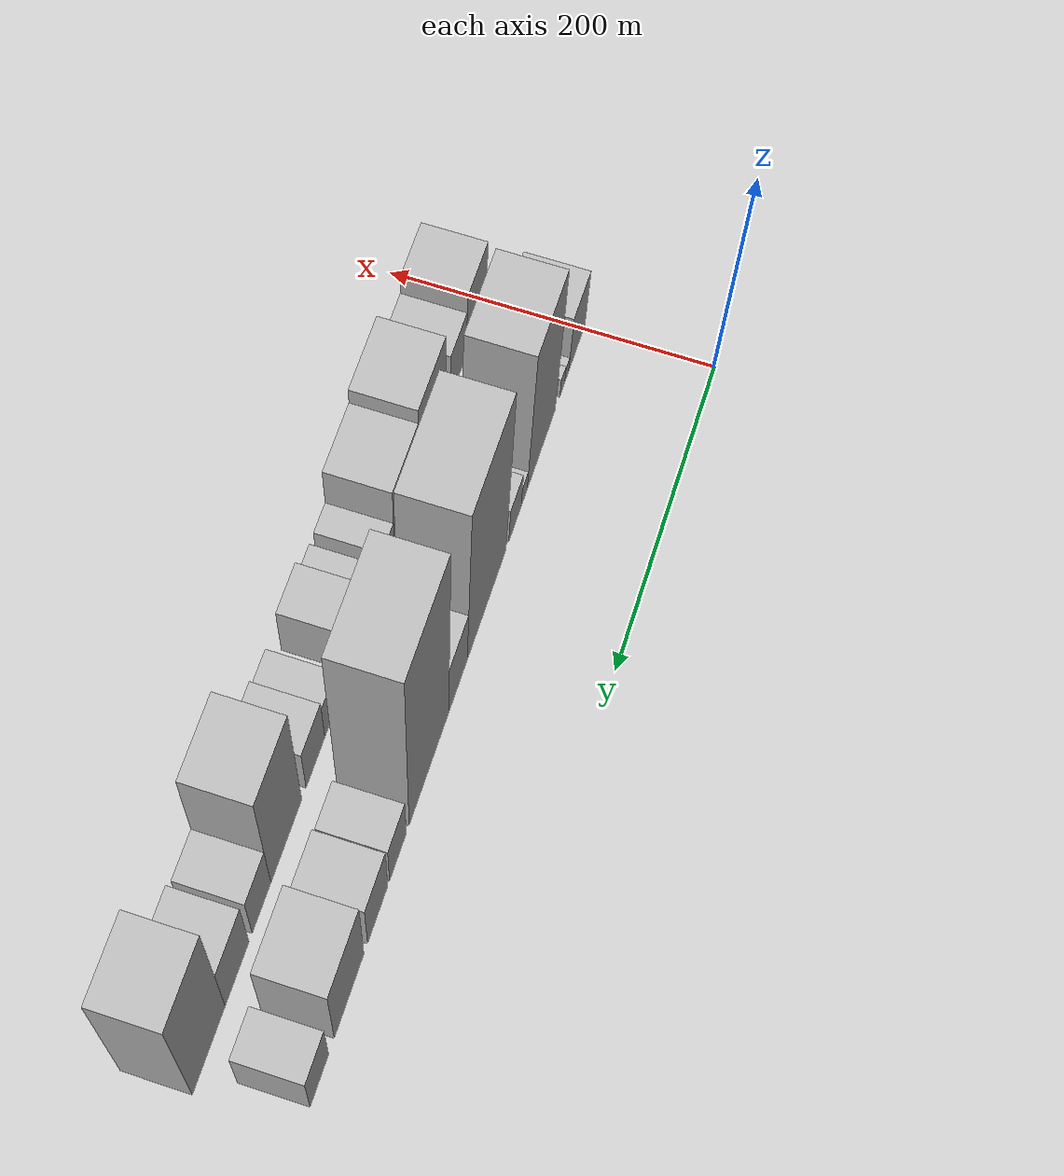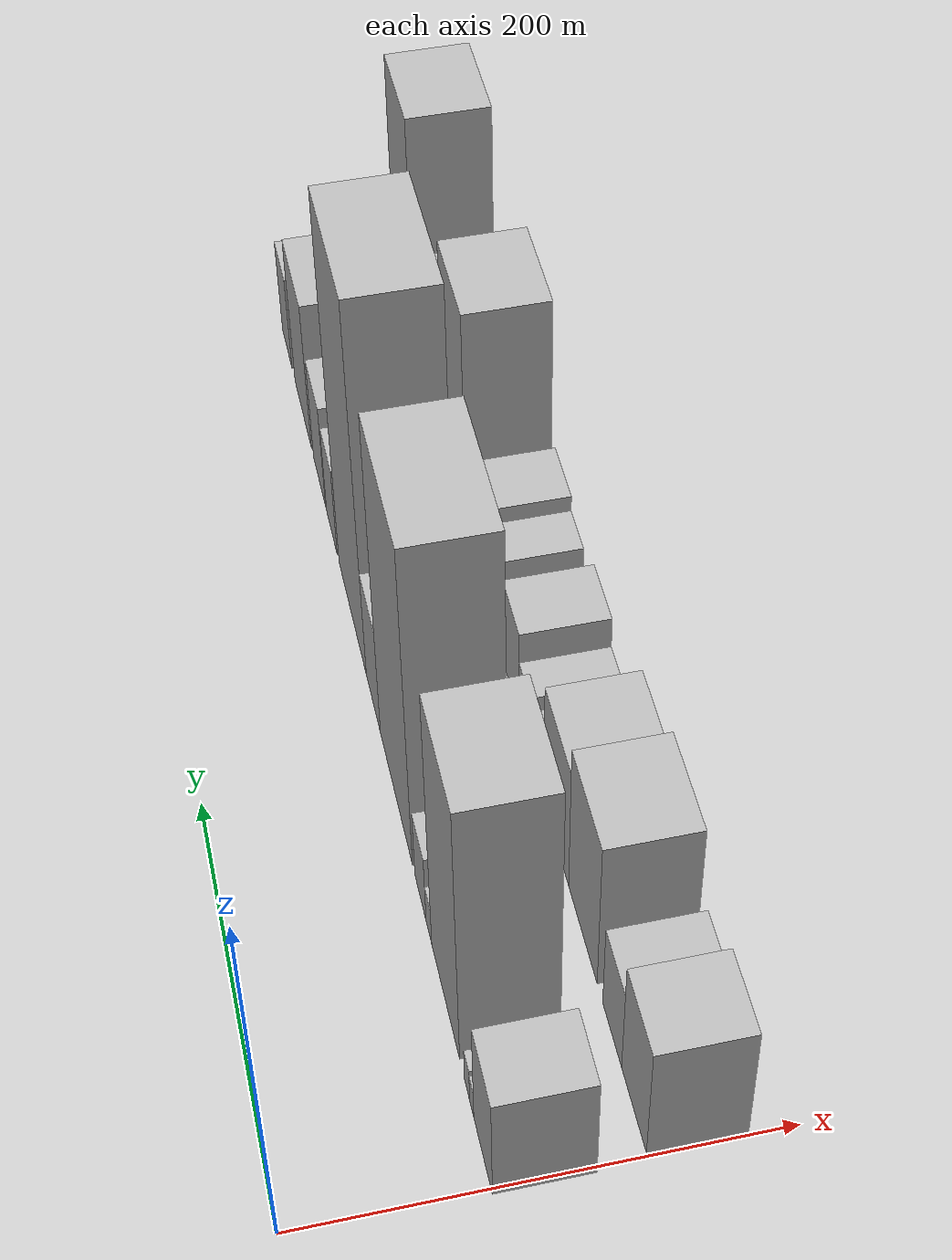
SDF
<sdf version="1.6">
 <world name="default">
  <model name="building_11">
   <static>1</static>
   <pose>100.0000 14.1119 0 0.000000 0.000000 0.000000</pose>
   <link name="link">
    <pose>0 0 31.50 0 0 0</pose>
    <collision name="collision"><geometry><box><size>40.0000 32.6657 63.0000</size></box></geometry></collision>
    <visual name="visual">
     <cast_shadows>0</cast_shadows>
     <geometry><box><size>40.0000 32.6657 63.0000</size></box></geometry>
     <material>
      <script>
       <uri>model://HANNAS_wall/materials/scripts</uri>
       <uri>model://HANNAS_wall/materials/textures</uri>
       <name>vrc/HANNAS_wall</name>
      </script>
     </material>
    </visual>
   </link>
  </model>
  <model name="building_12">
   <static>1</static>
   <pose>100.0000 34.2035 0 0.000000 0.000000 0.000000</pose>
   <link name="link">
    <pose>0 0 9.00 0 0 0</pose>
    <collision name="collision"><geometry><box><size>40.0000 7.5174 18.0000</size></box></geometry></collision>
    <visual name="visual">
     <cast_shadows>0</cast_shadows>
     <geometry><box><size>40.0000 7.5174 18.0000</size></box></geometry>
     <material>
      <script>
       <uri>model://HANNAS_wall/materials/scripts</uri>
       <uri>model://HANNAS_wall/materials/textures</uri>
       <name>vrc/HANNAS_wall</name>
      </script>
     </material>
    </visual>
   </link>
  </model>
  <model name="building_13">
   <static>1</static>
   <pose>100.0000 42.6813 0 0.000000 0.000000 0.000000</pose>
   <link name="link">
    <pose>0 0 10.50 0 0 0</pose>
    <collision name="collision"><geometry><box><size>40.0000 9.4382 21.0000</size></box></geometry></collision>
    <visual name="visual">
     <cast_shadows>0</cast_shadows>
     <geometry><box><size>40.0000 9.4382 21.0000</size></box></geometry>
     <material>
      <script>
       <uri>model://HANNAS_wall/materials/scripts</uri>
       <uri>model://HANNAS_wall/materials/textures</uri>
       <name>vrc/HANNAS_wall</name>
      </script>
     </material>
    </visual>
   </link>
  </model>
  <model name="building_14">
   <static>1</static>
   <pose>100.0000 83.3223 0 0.000000 0.000000 0.000000</pose>
   <link name="link">
    <pose>0 0 79.50 0 0 0</pose>
    <collision name="collision"><geometry><box><size>40.0000 53.8439 159.0000</size></box></geometry></collision>
    <visual name="visual">
     <cast_shadows>0</cast_shadows>
     <geometry><box><size>40.0000 53.8439 159.0000</size></box></geometry>
     <material>
      <script>
       <uri>model://HANNAS_wall/materials/scripts</uri>
       <uri>model://HANNAS_wall/materials/textures</uri>
       <name>vrc/HANNAS_wall</name>
      </script>
     </material>
    </visual>
   </link>
  </model>
  <model name="building_15">
   <static>1</static>
   <pose>100.0000 115.8907 0 0.000000 0.000000 0.000000</pose>
   <link name="link">
    <pose>0 0 12.00 0 0 0</pose>
    <collision name="collision"><geometry><box><size>40.0000 11.2929 24.0000</size></box></geometry></collision>
    <visual name="visual">
     <cast_shadows>0</cast_shadows>
     <geometry><box><size>40.0000 11.2929 24.0000</size></box></geometry>
     <material>
      <script>
       <uri>model://HANNAS_wall/materials/scripts</uri>
       <uri>model://HANNAS_wall/materials/textures</uri>
       <name>vrc/HANNAS_wall</name>
      </script>
     </material>
    </visual>
   </link>
  </model>
  <model name="building_16">
   <static>1</static>
   <pose>100.0000 133.2176 0 0.000000 0.000000 0.000000</pose>
   <link name="link">
    <pose>0 0 21.00 0 0 0</pose>
    <collision name="collision"><geometry><box><size>40.0000 23.3609 42.0000</size></box></geometry></collision>
    <visual name="visual">
     <cast_shadows>0</cast_shadows>
     <geometry><box><size>40.0000 23.3609 42.0000</size></box></geometry>
     <material>
      <script>
       <uri>model://HANNAS_wall/materials/scripts</uri>
       <uri>model://HANNAS_wall/materials/textures</uri>
       <name>vrc/HANNAS_wall</name>
      </script>
     </material>
    </visual>
   </link>
  </model>
  <model name="building_17">
   <static>1</static>
   <pose>100.0000 185.1292 0 0.000000 0.000000 0.000000</pose>
   <link name="link">
    <pose>0 0 96.00 0 0 0</pose>
    <collision name="collision"><geometry><box><size>40.0000 70.4622 192.0000</size></box></geometry></collision>
    <visual name="visual">
     <cast_shadows>0</cast_shadows>
     <geometry><box><size>40.0000 70.4622 192.0000</size></box></geometry>
     <material>
      <script>
       <uri>model://HANNAS_wall/materials/scripts</uri>
       <uri>model://HANNAS_wall/materials/textures</uri>
       <name>vrc/HANNAS_wall</name>
      </script>
     </material>
    </visual>
   </link>
  </model>
  <model name="building_18">
   <static>1</static>
   <pose>100.0000 236.8754 0 0.000000 0.000000 0.000000</pose>
   <link name="link">
    <pose>0 0 33.00 0 0 0</pose>
    <collision name="collision"><geometry><box><size>40.0000 33.0302 66.0000</size></box></geometry></collision>
    <visual name="visual">
     <cast_shadows>0</cast_shadows>
     <geometry><box><size>40.0000 33.0302 66.0000</size></box></geometry>
     <material>
      <script>
       <uri>model://HANNAS_wall/materials/scripts</uri>
       <uri>model://HANNAS_wall/materials/textures</uri>
       <name>vrc/HANNAS_wall</name>
      </script>
     </material>
    </visual>
   </link>
  </model>
  <model name="building_19">
   <static>1</static>
   <pose>100.0000 287.3992 0 0.000000 0.000000 0.000000</pose>
   <link name="link">
    <pose>0 0 109.50 0 0 0</pose>
    <collision name="collision"><geometry><box><size>40.0000 68.0175 219.0000</size></box></geometry></collision>
    <visual name="visual">
     <cast_shadows>0</cast_shadows>
     <geometry><box><size>40.0000 68.0175 219.0000</size></box></geometry>
     <material>
      <script>
       <uri>model://HANNAS_wall/materials/scripts</uri>
       <uri>model://HANNAS_wall/materials/textures</uri>
       <name>vrc/HANNAS_wall</name>
      </script>
     </material>
    </visual>
   </link>
  </model>
  <model name="building_20">
   <static>1</static>
   <pose>100.0000 340.3012 0 0.000000 0.000000 0.000000</pose>
   <link name="link">
    <pose>0 0 27.00 0 0 0</pose>
    <collision name="collision"><geometry><box><size>40.0000 27.7864 54.0000</size></box></geometry></collision>
    <visual name="visual">
     <cast_shadows>0</cast_shadows>
     <geometry><box><size>40.0000 27.7864 54.0000</size></box></geometry>
     <material>
      <script>
       <uri>model://HANNAS_wall/materials/scripts</uri>
       <uri>model://HANNAS_wall/materials/textures</uri>
       <name>vrc/HANNAS_wall</name>
      </script>
     </material>
    </visual>
   </link>
  </model>
  <model name="building_21">
   <static>1</static>
   <pose>100.0000 373.6779 0 0.000000 0.000000 0.000000</pose>
   <link name="link">
    <pose>0 0 31.50 0 0 0</pose>
    <collision name="collision"><geometry><box><size>40.0000 32.9671 63.0000</size></box></geometry></collision>
    <visual name="visual">
     <cast_shadows>0</cast_shadows>
     <geometry><box><size>40.0000 32.9671 63.0000</size></box></geometry>
     <material>
      <script>
       <uri>model://HANNAS_wall/materials/scripts</uri>
       <uri>model://HANNAS_wall/materials/textures</uri>
       <name>vrc/HANNAS_wall</name>
      </script>
     </material>
    </visual>
   </link>
  </model>
  <model name="building_22">
   <static>1</static>
   <pose>100.0000 419.8662 0 0.000000 0.000000 0.000000</pose>
   <link name="link">
    <pose>0 0 45.00 0 0 0</pose>
    <collision name="collision"><geometry><box><size>40.0000 47.4095 90.0000</size></box></geometry></collision>
    <visual name="visual">
     <cast_shadows>0</cast_shadows>
     <geometry><box><size>40.0000 47.4095 90.0000</size></box></geometry>
     <material>
      <script>
       <uri>model://HANNAS_wall/materials/scripts</uri>
       <uri>model://HANNAS_wall/materials/textures</uri>
       <name>vrc/HANNAS_wall</name>
      </script>
     </material>
    </visual>
   </link>
  </model>
  <model name="building_23">
   <static>1</static>
   <pose>100.0000 466.9718 0 0.000000 0.000000 0.000000</pose>
   <link name="link">
    <pose>0 0 28.50 0 0 0</pose>
    <collision name="collision"><geometry><box><size>40.0000 28.8017 57.0000</size></box></geometry></collision>
    <visual name="visual">
     <cast_shadows>0</cast_shadows>
     <geometry><box><size>40.0000 28.8017 57.0000</size></box></geometry>
     <material>
      <script>
       <uri>model://HANNAS_wall/materials/scripts</uri>
       <uri>model://HANNAS_wall/materials/textures</uri>
       <name>vrc/HANNAS_wall</name>
      </script>
     </material>
    </visual>
   </link>
  </model>
  <model name="building_38">
   <static>1</static>
   <pose>160.0000 20.1905 0 0.000000 0.000000 0.000000</pose>
   <link name="link">
    <pose>0 0 34.50 0 0 0</pose>
    <collision name="collision"><geometry><box><size>40.0000 37.3941 69.0000</size></box></geometry></collision>
    <visual name="visual">
     <cast_shadows>0</cast_shadows>
     <geometry><box><size>40.0000 37.3941 69.0000</size></box></geometry>
     <material>
      <script>
       <uri>model://HANNAS_wall/materials/scripts</uri>
       <uri>model://HANNAS_wall/materials/textures</uri>
       <name>vrc/HANNAS_wall</name>
      </script>
     </material>
    </visual>
   </link>
  </model>
  <model name="building_39">
   <static>1</static>
   <pose>160.0000 53.7200 0 0.000000 0.000000 0.000000</pose>
   <link name="link">
    <pose>0 0 25.50 0 0 0</pose>
    <collision name="collision"><geometry><box><size>40.0000 29.6651 51.0000</size></box></geometry></collision>
    <visual name="visual">
     <cast_shadows>0</cast_shadows>
     <geometry><box><size>40.0000 29.6651 51.0000</size></box></geometry>
     <material>
      <script>
       <uri>model://HANNAS_wall/materials/scripts</uri>
       <uri>model://HANNAS_wall/materials/textures</uri>
       <name>vrc/HANNAS_wall</name>
      </script>
     </material>
    </visual>
   </link>
  </model>
  <model name="building_40">
   <static>1</static>
   <pose>160.0000 101.4592 0 0.000000 0.000000 0.000000</pose>
   <link name="link">
    <pose>0 0 45.00 0 0 0</pose>
    <collision name="collision"><geometry><box><size>40.0000 47.8132 90.0000</size></box></geometry></collision>
    <visual name="visual">
     <cast_shadows>0</cast_shadows>
     <geometry><box><size>40.0000 47.8132 90.0000</size></box></geometry>
     <material>
      <script>
       <uri>model://HANNAS_wall/materials/scripts</uri>
       <uri>model://HANNAS_wall/materials/textures</uri>
       <name>vrc/HANNAS_wall</name>
      </script>
     </material>
    </visual>
   </link>
  </model>
  <model name="building_41">
   <static>1</static>
   <pose>160.0000 147.4232 0 0.000000 0.000000 0.000000</pose>
   <link name="link">
    <pose>0 0 37.50 0 0 0</pose>
    <collision name="collision"><geometry><box><size>40.0000 44.1148 75.0000</size></box></geometry></collision>
    <visual name="visual">
     <cast_shadows>0</cast_shadows>
     <geometry><box><size>40.0000 44.1148 75.0000</size></box></geometry>
     <material>
      <script>
       <uri>model://HANNAS_wall/materials/scripts</uri>
       <uri>model://HANNAS_wall/materials/textures</uri>
       <name>vrc/HANNAS_wall</name>
      </script>
     </material>
    </visual>
   </link>
  </model>
  <model name="building_42">
   <static>1</static>
   <pose>160.0000 179.1580 0 0.000000 0.000000 0.000000</pose>
   <link name="link">
    <pose>0 0 18.00 0 0 0</pose>
    <collision name="collision"><geometry><box><size>40.0000 19.3549 36.0000</size></box></geometry></collision>
    <visual name="visual">
     <cast_shadows>0</cast_shadows>
     <geometry><box><size>40.0000 19.3549 36.0000</size></box></geometry>
     <material>
      <script>
       <uri>model://HANNAS_wall/materials/scripts</uri>
       <uri>model://HANNAS_wall/materials/textures</uri>
       <name>vrc/HANNAS_wall</name>
      </script>
     </material>
    </visual>
   </link>
  </model>
  <model name="building_43">
   <static>1</static>
   <pose>160.0000 205.8240 0 0.000000 0.000000 0.000000</pose>
   <link name="link">
    <pose>0 0 18.00 0 0 0</pose>
    <collision name="collision"><geometry><box><size>40.0000 19.9771 36.0000</size></box></geometry></collision>
    <visual name="visual">
     <cast_shadows>0</cast_shadows>
     <geometry><box><size>40.0000 19.9771 36.0000</size></box></geometry>
     <material>
      <script>
       <uri>model://HANNAS_wall/materials/scripts</uri>
       <uri>model://HANNAS_wall/materials/textures</uri>
       <name>vrc/HANNAS_wall</name>
      </script>
     </material>
    </visual>
   </link>
  </model>
  <model name="building_44">
   <static>1</static>
   <pose>160.0000 231.4944 0 0.000000 0.000000 0.000000</pose>
   <link name="link">
    <pose>0 0 27.00 0 0 0</pose>
    <collision name="collision"><geometry><box><size>40.0000 31.3637 54.0000</size></box></geometry></collision>
    <visual name="visual">
     <cast_shadows>0</cast_shadows>
     <geometry><box><size>40.0000 31.3637 54.0000</size></box></geometry>
     <material>
      <script>
       <uri>model://HANNAS_wall/materials/scripts</uri>
       <uri>model://HANNAS_wall/materials/textures</uri>
       <name>vrc/HANNAS_wall</name>
      </script>
     </material>
    </visual>
   </link>
  </model>
  <model name="building_45">
   <static>1</static>
   <pose>160.0000 260.5845 0 0.000000 0.000000 0.000000</pose>
   <link name="link">
    <pose>0 0 9.00 0 0 0</pose>
    <collision name="collision"><geometry><box><size>40.0000 8.8166 18.0000</size></box></geometry></collision>
    <visual name="visual">
     <cast_shadows>0</cast_shadows>
     <geometry><box><size>40.0000 8.8166 18.0000</size></box></geometry>
     <material>
      <script>
       <uri>model://HANNAS_wall/materials/scripts</uri>
       <uri>model://HANNAS_wall/materials/textures</uri>
       <name>vrc/HANNAS_wall</name>
      </script>
     </material>
    </visual>
   </link>
  </model>
  <model name="building_46">
   <static>1</static>
   <pose>160.0000 276.5592 0 0.000000 0.000000 0.000000</pose>
   <link name="link">
    <pose>0 0 22.50 0 0 0</pose>
    <collision name="collision"><geometry><box><size>40.0000 23.1328 45.0000</size></box></geometry></collision>
    <visual name="visual">
     <cast_shadows>0</cast_shadows>
     <geometry><box><size>40.0000 23.1328 45.0000</size></box></geometry>
     <material>
      <script>
       <uri>model://HANNAS_wall/materials/scripts</uri>
       <uri>model://HANNAS_wall/materials/textures</uri>
       <name>vrc/HANNAS_wall</name>
      </script>
     </material>
    </visual>
   </link>
  </model>
  <model name="building_47">
   <static>1</static>
   <pose>160.0000 303.4868 0 0.000000 0.000000 0.000000</pose>
   <link name="link">
    <pose>0 0 27.00 0 0 0</pose>
    <collision name="collision"><geometry><box><size>40.0000 30.7224 54.0000</size></box></geometry></collision>
    <visual name="visual">
     <cast_shadows>0</cast_shadows>
     <geometry><box><size>40.0000 30.7224 54.0000</size></box></geometry>
     <material>
      <script>
       <uri>model://HANNAS_wall/materials/scripts</uri>
       <uri>model://HANNAS_wall/materials/textures</uri>
       <name>vrc/HANNAS_wall</name>
      </script>
     </material>
    </visual>
   </link>
  </model>
  <model name="building_48">
   <static>1</static>
   <pose>160.0000 350.4329 0 0.000000 0.000000 0.000000</pose>
   <link name="link">
    <pose>0 0 67.50 0 0 0</pose>
    <collision name="collision"><geometry><box><size>40.0000 49.1699 135.0000</size></box></geometry></collision>
    <visual name="visual">
     <cast_shadows>0</cast_shadows>
     <geometry><box><size>40.0000 49.1699 135.0000</size></box></geometry>
     <material>
      <script>
       <uri>model://HANNAS_wall/materials/scripts</uri>
       <uri>model://HANNAS_wall/materials/textures</uri>
       <name>vrc/HANNAS_wall</name>
      </script>
     </material>
    </visual>
   </link>
  </model>
  <model name="building_49">
   <static>1</static>
   <pose>160.0000 389.6244 0 0.000000 0.000000 0.000000</pose>
   <link name="link">
    <pose>0 0 28.50 0 0 0</pose>
    <collision name="collision"><geometry><box><size>40.0000 29.2130 57.0000</size></box></geometry></collision>
    <visual name="visual">
     <cast_shadows>0</cast_shadows>
     <geometry><box><size>40.0000 29.2130 57.0000</size></box></geometry>
     <material>
      <script>
       <uri>model://HANNAS_wall/materials/scripts</uri>
       <uri>model://HANNAS_wall/materials/textures</uri>
       <name>vrc/HANNAS_wall</name>
      </script>
     </material>
    </visual>
   </link>
  </model>
  <model name="building_50">
   <static>1</static>
   <pose>160.0000 427.3902 0 0.000000 0.000000 0.000000</pose>
   <link name="link">
    <pose>0 0 33.00 0 0 0</pose>
    <collision name="collision"><geometry><box><size>40.0000 36.3186 66.0000</size></box></geometry></collision>
    <visual name="visual">
     <cast_shadows>0</cast_shadows>
     <geometry><box><size>40.0000 36.3186 66.0000</size></box></geometry>
     <material>
      <script>
       <uri>model://HANNAS_wall/materials/scripts</uri>
       <uri>model://HANNAS_wall/materials/textures</uri>
       <name>vrc/HANNAS_wall</name>
      </script>
     </material>
    </visual>
   </link>
  </model>
  <model name="building_51">
   <static>1</static>
   <pose>160.0000 470.1164 0 0.000000 0.000000 0.000000</pose>
   <link name="link">
    <pose>0 0 73.50 0 0 0</pose>
    <collision name="collision"><geometry><box><size>40.0000 49.1338 147.0000</size></box></geometry></collision>
    <visual name="visual">
     <cast_shadows>0</cast_shadows>
     <geometry><box><size>40.0000 49.1338 147.0000</size></box></geometry>
     <material>
      <script>
       <uri>model://HANNAS_wall/materials/scripts</uri>
       <uri>model://HANNAS_wall/materials/textures</uri>
       <name>vrc/HANNAS_wall</name>
      </script>
     </material>
    </visual>
   </link>
  </model>
 </world>
</sdf>
